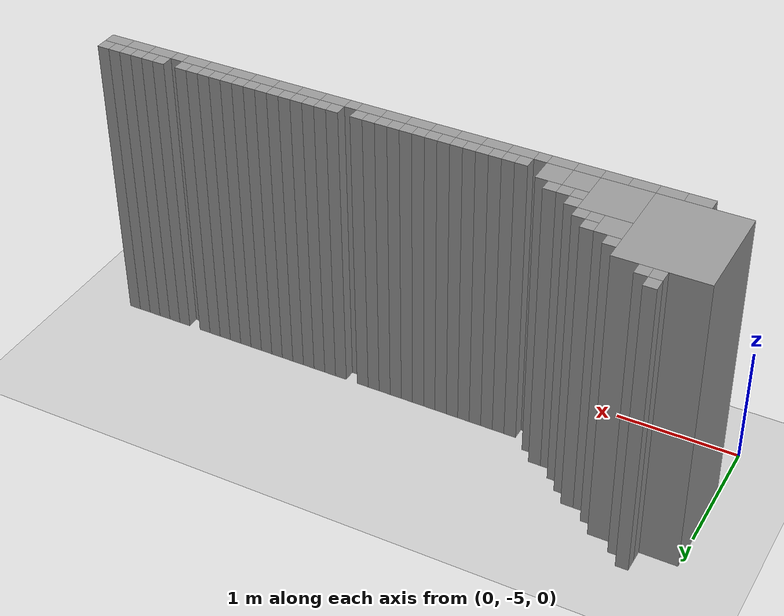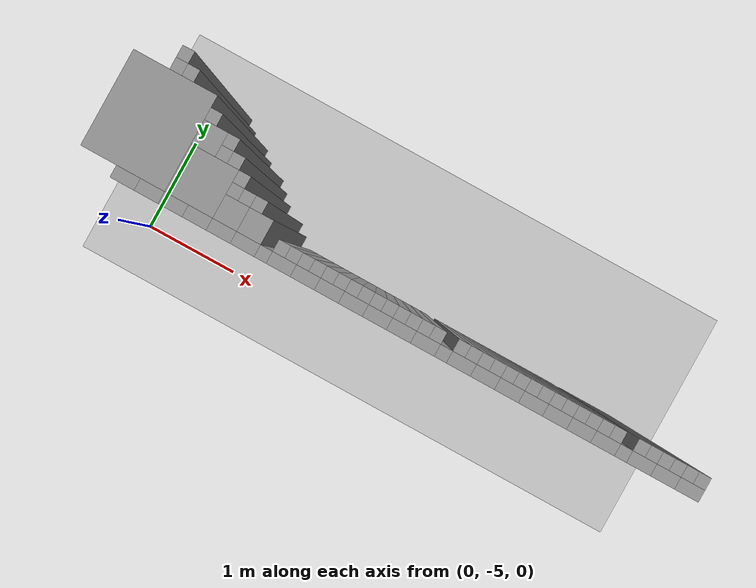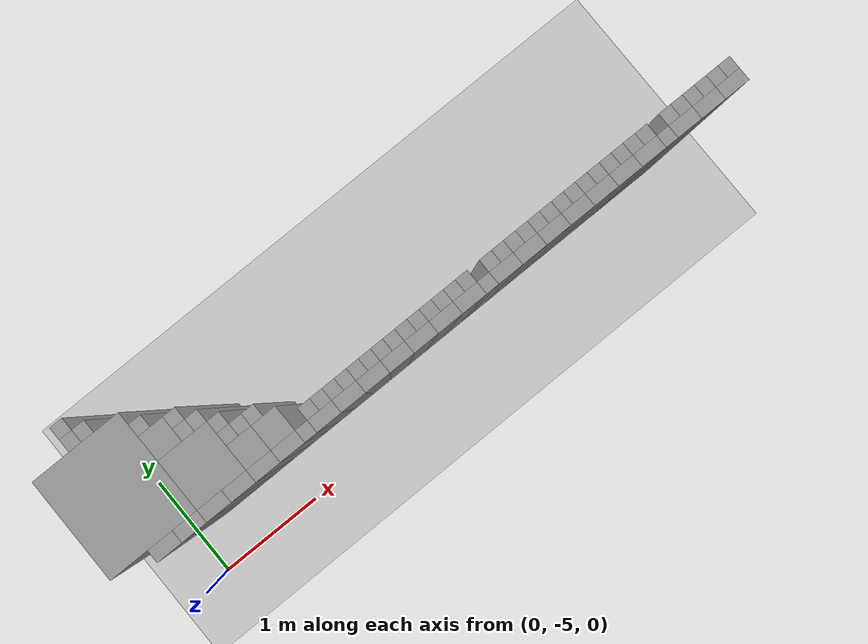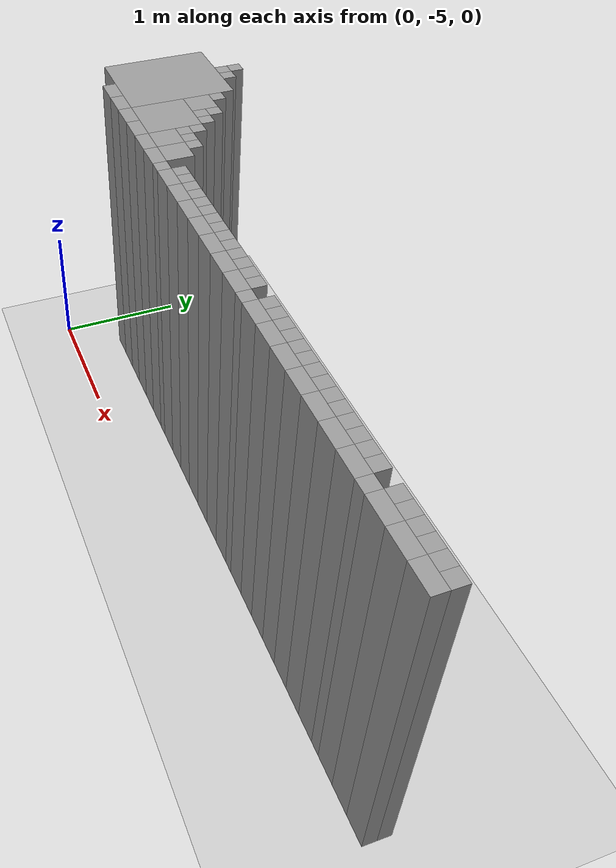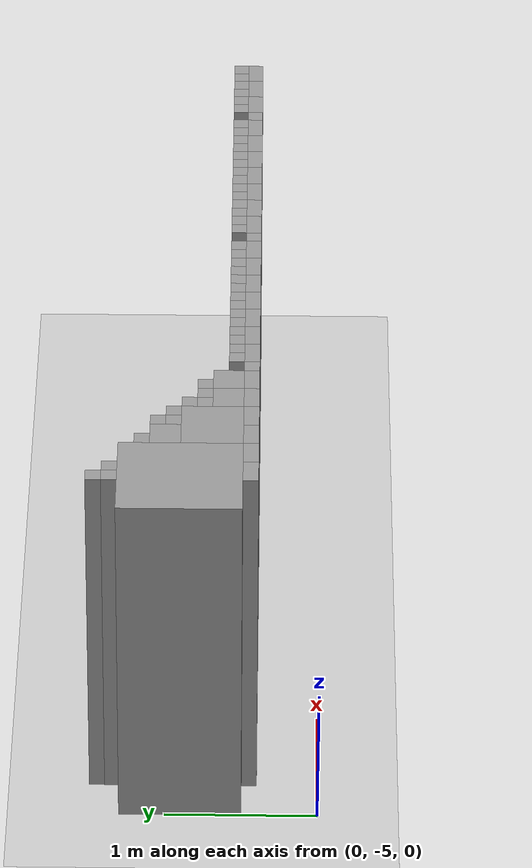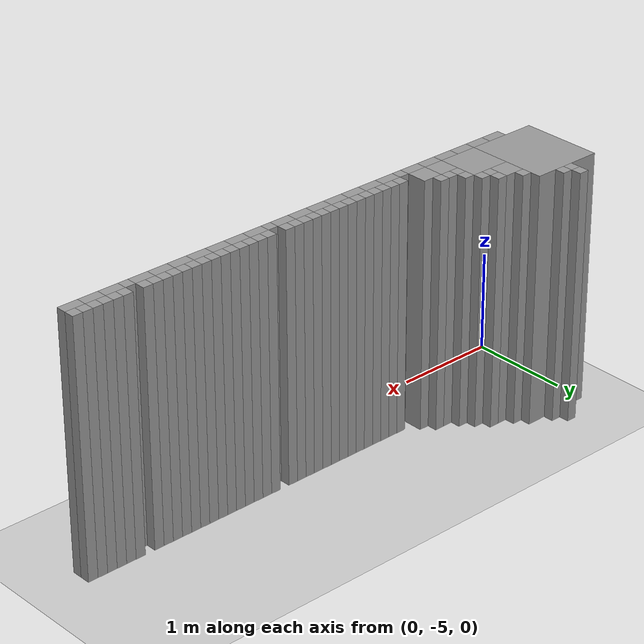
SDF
<sdf version="1.6">
 <world name="default">
  <include><uri>model://sun</uri></include>
  <include><uri>model://ground_plane</uri></include>
  <model name="stage_test">
   <static>1</static>
   <pose>-12 -12 0 0 0 0</pose>
   <link name="Wall_823">
    <pose>12.350000000000001 8.45 0 0 0 0</pose>
    <collision name="Wall_823_collision">
     <pose>0 0 1.25 0 0 0</pose>
     <geometry><box><size>0.09999999999999964 0.09999999999999964 2.5</size></box></geometry>
    </collision>
    <visual name="Wall_823_visual">
     <pose>0 0 1.25 0 0 0</pose>
     <geometry><box><size>0.09999999999999964 0.09999999999999964 2.5</size></box></geometry>
     <material>
      <script><uri>file://media/materials/scripts/gazebo.material</uri><name>Gazebo/Grey</name></script>
      <ambient>1 1 1 1</ambient>
     </material>
    </visual>
   </link>
   <link name="Wall_824">
    <pose>12.350000000000001 8.35 0 0 0 0</pose>
    <collision name="Wall_824_collision">
     <pose>0 0 1.25 0 0 0</pose>
     <geometry><box><size>0.09999999999999964 0.09999999999999964 2.5</size></box></geometry>
    </collision>
    <visual name="Wall_824_visual">
     <pose>0 0 1.25 0 0 0</pose>
     <geometry><box><size>0.09999999999999964 0.09999999999999964 2.5</size></box></geometry>
     <material>
      <script><uri>file://media/materials/scripts/gazebo.material</uri><name>Gazebo/Grey</name></script>
      <ambient>1 1 1 1</ambient>
     </material>
    </visual>
   </link>
   <link name="Wall_825">
    <pose>12.45 8.35 0 0 0 0</pose>
    <collision name="Wall_825_collision">
     <pose>0 0 1.25 0 0 0</pose>
     <geometry><box><size>0.09999999999999964 0.09999999999999964 2.5</size></box></geometry>
    </collision>
    <visual name="Wall_825_visual">
     <pose>0 0 1.25 0 0 0</pose>
     <geometry><box><size>0.09999999999999964 0.09999999999999964 2.5</size></box></geometry>
     <material>
      <script><uri>file://media/materials/scripts/gazebo.material</uri><name>Gazebo/Grey</name></script>
      <ambient>1 1 1 1</ambient>
     </material>
    </visual>
   </link>
   <link name="Wall_826">
    <pose>12.350000000000001 7.9 0 0 0 0</pose>
    <collision name="Wall_826_collision">
     <pose>0 0 1.25 0 0 0</pose>
     <geometry><box><size>0.7000000000000011 0.8000000000000007 2.5</size></box></geometry>
    </collision>
    <visual name="Wall_826_visual">
     <pose>0 0 1.25 0 0 0</pose>
     <geometry><box><size>0.7000000000000011 0.8000000000000007 2.5</size></box></geometry>
     <material>
      <script><uri>file://media/materials/scripts/gazebo.material</uri><name>Gazebo/Grey</name></script>
      <ambient>1 1 1 1</ambient>
     </material>
    </visual>
   </link>
   <link name="Wall_827">
    <pose>12.75 8.15 0 0 0 0</pose>
    <collision name="Wall_827_collision">
     <pose>0 0 1.25 0 0 0</pose>
     <geometry><box><size>0.09999999999999964 0.10000000000000142 2.5</size></box></geometry>
    </collision>
    <visual name="Wall_827_visual">
     <pose>0 0 1.25 0 0 0</pose>
     <geometry><box><size>0.09999999999999964 0.10000000000000142 2.5</size></box></geometry>
     <material>
      <script><uri>file://media/materials/scripts/gazebo.material</uri><name>Gazebo/Grey</name></script>
      <ambient>1 1 1 1</ambient>
     </material>
    </visual>
   </link>
   <link name="Wall_828">
    <pose>12.8 8.0 0 0 0 0</pose>
    <collision name="Wall_828_collision">
     <pose>0 0 1.25 0 0 0</pose>
     <geometry><box><size>0.1999999999999993 0.1999999999999993 2.5</size></box></geometry>
    </collision>
    <visual name="Wall_828_visual">
     <pose>0 0 1.25 0 0 0</pose>
     <geometry><box><size>0.1999999999999993 0.1999999999999993 2.5</size></box></geometry>
     <material>
      <script><uri>file://media/materials/scripts/gazebo.material</uri><name>Gazebo/Grey</name></script>
      <ambient>1 1 1 1</ambient>
     </material>
    </visual>
   </link>
   <link name="Wall_829">
    <pose>12.95 8.05 0 0 0 0</pose>
    <collision name="Wall_829_collision">
     <pose>0 0 1.25 0 0 0</pose>
     <geometry><box><size>0.09999999999999964 0.09999999999999964 2.5</size></box></geometry>
    </collision>
    <visual name="Wall_829_visual">
     <pose>0 0 1.25 0 0 0</pose>
     <geometry><box><size>0.09999999999999964 0.09999999999999964 2.5</size></box></geometry>
     <material>
      <script><uri>file://media/materials/scripts/gazebo.material</uri><name>Gazebo/Grey</name></script>
      <ambient>1 1 1 1</ambient>
     </material>
    </visual>
   </link>
   <link name="Wall_830">
    <pose>12.95 7.95 0 0 0 0</pose>
    <collision name="Wall_830_collision">
     <pose>0 0 1.25 0 0 0</pose>
     <geometry><box><size>0.09999999999999964 0.09999999999999964 2.5</size></box></geometry>
    </collision>
    <visual name="Wall_830_visual">
     <pose>0 0 1.25 0 0 0</pose>
     <geometry><box><size>0.09999999999999964 0.09999999999999964 2.5</size></box></geometry>
     <material>
      <script><uri>file://media/materials/scripts/gazebo.material</uri><name>Gazebo/Grey</name></script>
      <ambient>1 1 1 1</ambient>
     </material>
    </visual>
   </link>
   <link name="Wall_831">
    <pose>13.05 7.95 0 0 0 0</pose>
    <collision name="Wall_831_collision">
     <pose>0 0 1.25 0 0 0</pose>
     <geometry><box><size>0.10000000000000142 0.09999999999999964 2.5</size></box></geometry>
    </collision>
    <visual name="Wall_831_visual">
     <pose>0 0 1.25 0 0 0</pose>
     <geometry><box><size>0.10000000000000142 0.09999999999999964 2.5</size></box></geometry>
     <material>
      <script><uri>file://media/materials/scripts/gazebo.material</uri><name>Gazebo/Grey</name></script>
      <ambient>1 1 1 1</ambient>
     </material>
    </visual>
   </link>
   <link name="Wall_832">
    <pose>12.900000000000002 7.699999999999999 0 0 0 0</pose>
    <collision name="Wall_832_collision">
     <pose>0 0 1.25 0 0 0</pose>
     <geometry><box><size>0.40000000000000036 0.40000000000000036 2.5</size></box></geometry>
    </collision>
    <visual name="Wall_832_visual">
     <pose>0 0 1.25 0 0 0</pose>
     <geometry><box><size>0.40000000000000036 0.40000000000000036 2.5</size></box></geometry>
     <material>
      <script><uri>file://media/materials/scripts/gazebo.material</uri><name>Gazebo/Grey</name></script>
      <ambient>1 1 1 1</ambient>
     </material>
    </visual>
   </link>
   <link name="Wall_833">
    <pose>13.150000000000002 7.85 0 0 0 0</pose>
    <collision name="Wall_833_collision">
     <pose>0 0 1.25 0 0 0</pose>
     <geometry><box><size>0.09999999999999964 0.09999999999999964 2.5</size></box></geometry>
    </collision>
    <visual name="Wall_833_visual">
     <pose>0 0 1.25 0 0 0</pose>
     <geometry><box><size>0.09999999999999964 0.09999999999999964 2.5</size></box></geometry>
     <material>
      <script><uri>file://media/materials/scripts/gazebo.material</uri><name>Gazebo/Grey</name></script>
      <ambient>1 1 1 1</ambient>
     </material>
    </visual>
   </link>
   <link name="Wall_834">
    <pose>13.150000000000002 7.750000000000001 0 0 0 0</pose>
    <collision name="Wall_834_collision">
     <pose>0 0 1.25 0 0 0</pose>
     <geometry><box><size>0.09999999999999964 0.10000000000000053 2.5</size></box></geometry>
    </collision>
    <visual name="Wall_834_visual">
     <pose>0 0 1.25 0 0 0</pose>
     <geometry><box><size>0.09999999999999964 0.10000000000000053 2.5</size></box></geometry>
     <material>
      <script><uri>file://media/materials/scripts/gazebo.material</uri><name>Gazebo/Grey</name></script>
      <ambient>1 1 1 1</ambient>
     </material>
    </visual>
   </link>
   <link name="Wall_835">
    <pose>13.25 7.750000000000001 0 0 0 0</pose>
    <collision name="Wall_835_collision">
     <pose>0 0 1.25 0 0 0</pose>
     <geometry><box><size>0.09999999999999964 0.10000000000000053 2.5</size></box></geometry>
    </collision>
    <visual name="Wall_835_visual">
     <pose>0 0 1.25 0 0 0</pose>
     <geometry><box><size>0.09999999999999964 0.10000000000000053 2.5</size></box></geometry>
     <material>
      <script><uri>file://media/materials/scripts/gazebo.material</uri><name>Gazebo/Grey</name></script>
      <ambient>1 1 1 1</ambient>
     </material>
    </visual>
   </link>
   <link name="Wall_836">
    <pose>13.200000000000001 7.6 0 0 0 0</pose>
    <collision name="Wall_836_collision">
     <pose>0 0 1.25 0 0 0</pose>
     <geometry><box><size>0.1999999999999993 0.20000000000000018 2.5</size></box></geometry>
    </collision>
    <visual name="Wall_836_visual">
     <pose>0 0 1.25 0 0 0</pose>
     <geometry><box><size>0.1999999999999993 0.20000000000000018 2.5</size></box></geometry>
     <material>
      <script><uri>file://media/materials/scripts/gazebo.material</uri><name>Gazebo/Grey</name></script>
      <ambient>1 1 1 1</ambient>
     </material>
    </visual>
   </link>
   <link name="Wall_837">
    <pose>13.350000000000001 7.750000000000001 0 0 0 0</pose>
    <collision name="Wall_837_collision">
     <pose>0 0 1.25 0 0 0</pose>
     <geometry><box><size>0.09999999999999964 0.10000000000000053 2.5</size></box></geometry>
    </collision>
    <visual name="Wall_837_visual">
     <pose>0 0 1.25 0 0 0</pose>
     <geometry><box><size>0.09999999999999964 0.10000000000000053 2.5</size></box></geometry>
     <material>
      <script><uri>file://media/materials/scripts/gazebo.material</uri><name>Gazebo/Grey</name></script>
      <ambient>1 1 1 1</ambient>
     </material>
    </visual>
   </link>
   <link name="Wall_838">
    <pose>13.399999999999999 7.6 0 0 0 0</pose>
    <collision name="Wall_838_collision">
     <pose>0 0 1.25 0 0 0</pose>
     <geometry><box><size>0.1999999999999993 0.20000000000000018 2.5</size></box></geometry>
    </collision>
    <visual name="Wall_838_visual">
     <pose>0 0 1.25 0 0 0</pose>
     <geometry><box><size>0.1999999999999993 0.20000000000000018 2.5</size></box></geometry>
     <material>
      <script><uri>file://media/materials/scripts/gazebo.material</uri><name>Gazebo/Grey</name></script>
      <ambient>1 1 1 1</ambient>
     </material>
    </visual>
   </link>
   <link name="Wall_841">
    <pose>12.399999999999999 7.45 0 0 0 0</pose>
    <collision name="Wall_841_collision">
     <pose>0 0 1.25 0 0 0</pose>
     <geometry><box><size>0.1999999999999993 0.09999999999999964 2.5</size></box></geometry>
    </collision>
    <visual name="Wall_841_visual">
     <pose>0 0 1.25 0 0 0</pose>
     <geometry><box><size>0.1999999999999993 0.09999999999999964 2.5</size></box></geometry>
     <material>
      <script><uri>file://media/materials/scripts/gazebo.material</uri><name>Gazebo/Grey</name></script>
      <ambient>1 1 1 1</ambient>
     </material>
    </visual>
   </link>
   <link name="Wall_842">
    <pose>12.600000000000001 7.45 0 0 0 0</pose>
    <collision name="Wall_842_collision">
     <pose>0 0 1.25 0 0 0</pose>
     <geometry><box><size>0.20000000000000107 0.09999999999999964 2.5</size></box></geometry>
    </collision>
    <visual name="Wall_842_visual">
     <pose>0 0 1.25 0 0 0</pose>
     <geometry><box><size>0.20000000000000107 0.09999999999999964 2.5</size></box></geometry>
     <material>
      <script><uri>file://media/materials/scripts/gazebo.material</uri><name>Gazebo/Grey</name></script>
      <ambient>1 1 1 1</ambient>
     </material>
    </visual>
   </link>
   <link name="Wall_843">
    <pose>12.8 7.45 0 0 0 0</pose>
    <collision name="Wall_843_collision">
     <pose>0 0 1.25 0 0 0</pose>
     <geometry><box><size>0.1999999999999993 0.09999999999999964 2.5</size></box></geometry>
    </collision>
    <visual name="Wall_843_visual">
     <pose>0 0 1.25 0 0 0</pose>
     <geometry><box><size>0.1999999999999993 0.09999999999999964 2.5</size></box></geometry>
     <material>
      <script><uri>file://media/materials/scripts/gazebo.material</uri><name>Gazebo/Grey</name></script>
      <ambient>1 1 1 1</ambient>
     </material>
    </visual>
   </link>
   <link name="Wall_844">
    <pose>13.0 7.45 0 0 0 0</pose>
    <collision name="Wall_844_collision">
     <pose>0 0 1.25 0 0 0</pose>
     <geometry><box><size>0.20000000000000107 0.09999999999999964 2.5</size></box></geometry>
    </collision>
    <visual name="Wall_844_visual">
     <pose>0 0 1.25 0 0 0</pose>
     <geometry><box><size>0.20000000000000107 0.09999999999999964 2.5</size></box></geometry>
     <material>
      <script><uri>file://media/materials/scripts/gazebo.material</uri><name>Gazebo/Grey</name></script>
      <ambient>1 1 1 1</ambient>
     </material>
    </visual>
   </link>
   <link name="Wall_845">
    <pose>13.200000000000001 7.45 0 0 0 0</pose>
    <collision name="Wall_845_collision">
     <pose>0 0 1.25 0 0 0</pose>
     <geometry><box><size>0.1999999999999993 0.09999999999999964 2.5</size></box></geometry>
    </collision>
    <visual name="Wall_845_visual">
     <pose>0 0 1.25 0 0 0</pose>
     <geometry><box><size>0.1999999999999993 0.09999999999999964 2.5</size></box></geometry>
     <material>
      <script><uri>file://media/materials/scripts/gazebo.material</uri><name>Gazebo/Grey</name></script>
      <ambient>1 1 1 1</ambient>
     </material>
    </visual>
   </link>
   <link name="Wall_846">
    <pose>13.399999999999999 7.45 0 0 0 0</pose>
    <collision name="Wall_846_collision">
     <pose>0 0 1.25 0 0 0</pose>
     <geometry><box><size>0.1999999999999993 0.09999999999999964 2.5</size></box></geometry>
    </collision>
    <visual name="Wall_846_visual">
     <pose>0 0 1.25 0 0 0</pose>
     <geometry><box><size>0.1999999999999993 0.09999999999999964 2.5</size></box></geometry>
     <material>
      <script><uri>file://media/materials/scripts/gazebo.material</uri><name>Gazebo/Grey</name></script>
      <ambient>1 1 1 1</ambient>
     </material>
    </visual>
   </link>
   <link name="Wall_847">
    <pose>13.650000000000002 7.550000000000001 0 0 0 0</pose>
    <collision name="Wall_847_collision">
     <pose>0 0 1.25 0 0 0</pose>
     <geometry><box><size>0.09999999999999964 0.10000000000000053 2.5</size></box></geometry>
    </collision>
    <visual name="Wall_847_visual">
     <pose>0 0 1.25 0 0 0</pose>
     <geometry><box><size>0.09999999999999964 0.10000000000000053 2.5</size></box></geometry>
     <material>
      <script><uri>file://media/materials/scripts/gazebo.material</uri><name>Gazebo/Grey</name></script>
      <ambient>1 1 1 1</ambient>
     </material>
    </visual>
   </link>
   <link name="Wall_848">
    <pose>13.75 7.550000000000001 0 0 0 0</pose>
    <collision name="Wall_848_collision">
     <pose>0 0 1.25 0 0 0</pose>
     <geometry><box><size>0.09999999999999964 0.10000000000000053 2.5</size></box></geometry>
    </collision>
    <visual name="Wall_848_visual">
     <pose>0 0 1.25 0 0 0</pose>
     <geometry><box><size>0.09999999999999964 0.10000000000000053 2.5</size></box></geometry>
     <material>
      <script><uri>file://media/materials/scripts/gazebo.material</uri><name>Gazebo/Grey</name></script>
      <ambient>1 1 1 1</ambient>
     </material>
    </visual>
   </link>
   <link name="Wall_849">
    <pose>13.850000000000001 7.550000000000001 0 0 0 0</pose>
    <collision name="Wall_849_collision">
     <pose>0 0 1.25 0 0 0</pose>
     <geometry><box><size>0.09999999999999964 0.10000000000000053 2.5</size></box></geometry>
    </collision>
    <visual name="Wall_849_visual">
     <pose>0 0 1.25 0 0 0</pose>
     <geometry><box><size>0.09999999999999964 0.10000000000000053 2.5</size></box></geometry>
     <material>
      <script><uri>file://media/materials/scripts/gazebo.material</uri><name>Gazebo/Grey</name></script>
      <ambient>1 1 1 1</ambient>
     </material>
    </visual>
   </link>
   <link name="Wall_850">
    <pose>13.95 7.550000000000001 0 0 0 0</pose>
    <collision name="Wall_850_collision">
     <pose>0 0 1.25 0 0 0</pose>
     <geometry><box><size>0.09999999999999964 0.10000000000000053 2.5</size></box></geometry>
    </collision>
    <visual name="Wall_850_visual">
     <pose>0 0 1.25 0 0 0</pose>
     <geometry><box><size>0.09999999999999964 0.10000000000000053 2.5</size></box></geometry>
     <material>
      <script><uri>file://media/materials/scripts/gazebo.material</uri><name>Gazebo/Grey</name></script>
      <ambient>1 1 1 1</ambient>
     </material>
    </visual>
   </link>
   <link name="Wall_851">
    <pose>14.05 7.550000000000001 0 0 0 0</pose>
    <collision name="Wall_851_collision">
     <pose>0 0 1.25 0 0 0</pose>
     <geometry><box><size>0.10000000000000142 0.10000000000000053 2.5</size></box></geometry>
    </collision>
    <visual name="Wall_851_visual">
     <pose>0 0 1.25 0 0 0</pose>
     <geometry><box><size>0.10000000000000142 0.10000000000000053 2.5</size></box></geometry>
     <material>
      <script><uri>file://media/materials/scripts/gazebo.material</uri><name>Gazebo/Grey</name></script>
      <ambient>1 1 1 1</ambient>
     </material>
    </visual>
   </link>
   <link name="Wall_852">
    <pose>14.150000000000002 7.550000000000001 0 0 0 0</pose>
    <collision name="Wall_852_collision">
     <pose>0 0 1.25 0 0 0</pose>
     <geometry><box><size>0.09999999999999964 0.10000000000000053 2.5</size></box></geometry>
    </collision>
    <visual name="Wall_852_visual">
     <pose>0 0 1.25 0 0 0</pose>
     <geometry><box><size>0.09999999999999964 0.10000000000000053 2.5</size></box></geometry>
     <material>
      <script><uri>file://media/materials/scripts/gazebo.material</uri><name>Gazebo/Grey</name></script>
      <ambient>1 1 1 1</ambient>
     </material>
    </visual>
   </link>
   <link name="Wall_853">
    <pose>14.25 7.550000000000001 0 0 0 0</pose>
    <collision name="Wall_853_collision">
     <pose>0 0 1.25 0 0 0</pose>
     <geometry><box><size>0.09999999999999964 0.10000000000000053 2.5</size></box></geometry>
    </collision>
    <visual name="Wall_853_visual">
     <pose>0 0 1.25 0 0 0</pose>
     <geometry><box><size>0.09999999999999964 0.10000000000000053 2.5</size></box></geometry>
     <material>
      <script><uri>file://media/materials/scripts/gazebo.material</uri><name>Gazebo/Grey</name></script>
      <ambient>1 1 1 1</ambient>
     </material>
    </visual>
   </link>
   <link name="Wall_854">
    <pose>14.350000000000001 7.550000000000001 0 0 0 0</pose>
    <collision name="Wall_854_collision">
     <pose>0 0 1.25 0 0 0</pose>
     <geometry><box><size>0.09999999999999964 0.10000000000000053 2.5</size></box></geometry>
    </collision>
    <visual name="Wall_854_visual">
     <pose>0 0 1.25 0 0 0</pose>
     <geometry><box><size>0.09999999999999964 0.10000000000000053 2.5</size></box></geometry>
     <material>
      <script><uri>file://media/materials/scripts/gazebo.material</uri><name>Gazebo/Grey</name></script>
      <ambient>1 1 1 1</ambient>
     </material>
    </visual>
   </link>
   <link name="Wall_855">
    <pose>14.45 7.550000000000001 0 0 0 0</pose>
    <collision name="Wall_855_collision">
     <pose>0 0 1.25 0 0 0</pose>
     <geometry><box><size>0.09999999999999964 0.10000000000000053 2.5</size></box></geometry>
    </collision>
    <visual name="Wall_855_visual">
     <pose>0 0 1.25 0 0 0</pose>
     <geometry><box><size>0.09999999999999964 0.10000000000000053 2.5</size></box></geometry>
     <material>
      <script><uri>file://media/materials/scripts/gazebo.material</uri><name>Gazebo/Grey</name></script>
      <ambient>1 1 1 1</ambient>
     </material>
    </visual>
   </link>
   <link name="Wall_856">
    <pose>14.55 7.550000000000001 0 0 0 0</pose>
    <collision name="Wall_856_collision">
     <pose>0 0 1.25 0 0 0</pose>
     <geometry><box><size>0.10000000000000142 0.10000000000000053 2.5</size></box></geometry>
    </collision>
    <visual name="Wall_856_visual">
     <pose>0 0 1.25 0 0 0</pose>
     <geometry><box><size>0.10000000000000142 0.10000000000000053 2.5</size></box></geometry>
     <material>
      <script><uri>file://media/materials/scripts/gazebo.material</uri><name>Gazebo/Grey</name></script>
      <ambient>1 1 1 1</ambient>
     </material>
    </visual>
   </link>
   <link name="Wall_857">
    <pose>14.650000000000002 7.550000000000001 0 0 0 0</pose>
    <collision name="Wall_857_collision">
     <pose>0 0 1.25 0 0 0</pose>
     <geometry><box><size>0.09999999999999964 0.10000000000000053 2.5</size></box></geometry>
    </collision>
    <visual name="Wall_857_visual">
     <pose>0 0 1.25 0 0 0</pose>
     <geometry><box><size>0.09999999999999964 0.10000000000000053 2.5</size></box></geometry>
     <material>
      <script><uri>file://media/materials/scripts/gazebo.material</uri><name>Gazebo/Grey</name></script>
      <ambient>1 1 1 1</ambient>
     </material>
    </visual>
   </link>
   <link name="Wall_858">
    <pose>14.75 7.550000000000001 0 0 0 0</pose>
    <collision name="Wall_858_collision">
     <pose>0 0 1.25 0 0 0</pose>
     <geometry><box><size>0.09999999999999964 0.10000000000000053 2.5</size></box></geometry>
    </collision>
    <visual name="Wall_858_visual">
     <pose>0 0 1.25 0 0 0</pose>
     <geometry><box><size>0.09999999999999964 0.10000000000000053 2.5</size></box></geometry>
     <material>
      <script><uri>file://media/materials/scripts/gazebo.material</uri><name>Gazebo/Grey</name></script>
      <ambient>1 1 1 1</ambient>
     </material>
    </visual>
   </link>
   <link name="Wall_859">
    <pose>14.850000000000001 7.550000000000001 0 0 0 0</pose>
    <collision name="Wall_859_collision">
     <pose>0 0 1.25 0 0 0</pose>
     <geometry><box><size>0.09999999999999964 0.10000000000000053 2.5</size></box></geometry>
    </collision>
    <visual name="Wall_859_visual">
     <pose>0 0 1.25 0 0 0</pose>
     <geometry><box><size>0.09999999999999964 0.10000000000000053 2.5</size></box></geometry>
     <material>
      <script><uri>file://media/materials/scripts/gazebo.material</uri><name>Gazebo/Grey</name></script>
      <ambient>1 1 1 1</ambient>
     </material>
    </visual>
   </link>
   <link name="Wall_860">
    <pose>14.95 7.550000000000001 0 0 0 0</pose>
    <collision name="Wall_860_collision">
     <pose>0 0 1.25 0 0 0</pose>
     <geometry><box><size>0.09999999999999964 0.10000000000000053 2.5</size></box></geometry>
    </collision>
    <visual name="Wall_860_visual">
     <pose>0 0 1.25 0 0 0</pose>
     <geometry><box><size>0.09999999999999964 0.10000000000000053 2.5</size></box></geometry>
     <material>
      <script><uri>file://media/materials/scripts/gazebo.material</uri><name>Gazebo/Grey</name></script>
      <ambient>1 1 1 1</ambient>
     </material>
    </visual>
   </link>
   <link name="Wall_861">
    <pose>13.55 7.45 0 0 0 0</pose>
    <collision name="Wall_861_collision">
     <pose>0 0 1.25 0 0 0</pose>
     <geometry><box><size>0.10000000000000142 0.09999999999999964 2.5</size></box></geometry>
    </collision>
    <visual name="Wall_861_visual">
     <pose>0 0 1.25 0 0 0</pose>
     <geometry><box><size>0.10000000000000142 0.09999999999999964 2.5</size></box></geometry>
     <material>
      <script><uri>file://media/materials/scripts/gazebo.material</uri><name>Gazebo/Grey</name></script>
      <ambient>1 1 1 1</ambient>
     </material>
    </visual>
   </link>
   <link name="Wall_862">
    <pose>13.700000000000001 7.45 0 0 0 0</pose>
    <collision name="Wall_862_collision">
     <pose>0 0 1.25 0 0 0</pose>
     <geometry><box><size>0.1999999999999993 0.09999999999999964 2.5</size></box></geometry>
    </collision>
    <visual name="Wall_862_visual">
     <pose>0 0 1.25 0 0 0</pose>
     <geometry><box><size>0.1999999999999993 0.09999999999999964 2.5</size></box></geometry>
     <material>
      <script><uri>file://media/materials/scripts/gazebo.material</uri><name>Gazebo/Grey</name></script>
      <ambient>1 1 1 1</ambient>
     </material>
    </visual>
   </link>
   <link name="Wall_863">
    <pose>13.899999999999999 7.45 0 0 0 0</pose>
    <collision name="Wall_863_collision">
     <pose>0 0 1.25 0 0 0</pose>
     <geometry><box><size>0.1999999999999993 0.09999999999999964 2.5</size></box></geometry>
    </collision>
    <visual name="Wall_863_visual">
     <pose>0 0 1.25 0 0 0</pose>
     <geometry><box><size>0.1999999999999993 0.09999999999999964 2.5</size></box></geometry>
     <material>
      <script><uri>file://media/materials/scripts/gazebo.material</uri><name>Gazebo/Grey</name></script>
      <ambient>1 1 1 1</ambient>
     </material>
    </visual>
   </link>
   <link name="Wall_864">
    <pose>14.100000000000001 7.45 0 0 0 0</pose>
    <collision name="Wall_864_collision">
     <pose>0 0 1.25 0 0 0</pose>
     <geometry><box><size>0.20000000000000107 0.09999999999999964 2.5</size></box></geometry>
    </collision>
    <visual name="Wall_864_visual">
     <pose>0 0 1.25 0 0 0</pose>
     <geometry><box><size>0.20000000000000107 0.09999999999999964 2.5</size></box></geometry>
     <material>
      <script><uri>file://media/materials/scripts/gazebo.material</uri><name>Gazebo/Grey</name></script>
      <ambient>1 1 1 1</ambient>
     </material>
    </visual>
   </link>
   <link name="Wall_865">
    <pose>14.3 7.45 0 0 0 0</pose>
    <collision name="Wall_865_collision">
     <pose>0 0 1.25 0 0 0</pose>
     <geometry><box><size>0.1999999999999993 0.09999999999999964 2.5</size></box></geometry>
    </collision>
    <visual name="Wall_865_visual">
     <pose>0 0 1.25 0 0 0</pose>
     <geometry><box><size>0.1999999999999993 0.09999999999999964 2.5</size></box></geometry>
     <material>
      <script><uri>file://media/materials/scripts/gazebo.material</uri><name>Gazebo/Grey</name></script>
      <ambient>1 1 1 1</ambient>
     </material>
    </visual>
   </link>
   <link name="Wall_866">
    <pose>14.5 7.45 0 0 0 0</pose>
    <collision name="Wall_866_collision">
     <pose>0 0 1.25 0 0 0</pose>
     <geometry><box><size>0.20000000000000107 0.09999999999999964 2.5</size></box></geometry>
    </collision>
    <visual name="Wall_866_visual">
     <pose>0 0 1.25 0 0 0</pose>
     <geometry><box><size>0.20000000000000107 0.09999999999999964 2.5</size></box></geometry>
     <material>
      <script><uri>file://media/materials/scripts/gazebo.material</uri><name>Gazebo/Grey</name></script>
      <ambient>1 1 1 1</ambient>
     </material>
    </visual>
   </link>
   <link name="Wall_867">
    <pose>14.700000000000001 7.45 0 0 0 0</pose>
    <collision name="Wall_867_collision">
     <pose>0 0 1.25 0 0 0</pose>
     <geometry><box><size>0.1999999999999993 0.09999999999999964 2.5</size></box></geometry>
    </collision>
    <visual name="Wall_867_visual">
     <pose>0 0 1.25 0 0 0</pose>
     <geometry><box><size>0.1999999999999993 0.09999999999999964 2.5</size></box></geometry>
     <material>
      <script><uri>file://media/materials/scripts/gazebo.material</uri><name>Gazebo/Grey</name></script>
      <ambient>1 1 1 1</ambient>
     </material>
    </visual>
   </link>
   <link name="Wall_868">
    <pose>14.899999999999999 7.45 0 0 0 0</pose>
    <collision name="Wall_868_collision">
     <pose>0 0 1.25 0 0 0</pose>
     <geometry><box><size>0.1999999999999993 0.09999999999999964 2.5</size></box></geometry>
    </collision>
    <visual name="Wall_868_visual">
     <pose>0 0 1.25 0 0 0</pose>
     <geometry><box><size>0.1999999999999993 0.09999999999999964 2.5</size></box></geometry>
     <material>
      <script><uri>file://media/materials/scripts/gazebo.material</uri><name>Gazebo/Grey</name></script>
      <ambient>1 1 1 1</ambient>
     </material>
    </visual>
   </link>
   <link name="Wall_878">
    <pose>15.150000000000002 7.550000000000001 0 0 0 0</pose>
    <collision name="Wall_878_collision">
     <pose>0 0 1.25 0 0 0</pose>
     <geometry><box><size>0.09999999999999964 0.10000000000000053 2.5</size></box></geometry>
    </collision>
    <visual name="Wall_878_visual">
     <pose>0 0 1.25 0 0 0</pose>
     <geometry><box><size>0.09999999999999964 0.10000000000000053 2.5</size></box></geometry>
     <material>
      <script><uri>file://media/materials/scripts/gazebo.material</uri><name>Gazebo/Grey</name></script>
      <ambient>1 1 1 1</ambient>
     </material>
    </visual>
   </link>
   <link name="Wall_879">
    <pose>15.25 7.550000000000001 0 0 0 0</pose>
    <collision name="Wall_879_collision">
     <pose>0 0 1.25 0 0 0</pose>
     <geometry><box><size>0.09999999999999964 0.10000000000000053 2.5</size></box></geometry>
    </collision>
    <visual name="Wall_879_visual">
     <pose>0 0 1.25 0 0 0</pose>
     <geometry><box><size>0.09999999999999964 0.10000000000000053 2.5</size></box></geometry>
     <material>
      <script><uri>file://media/materials/scripts/gazebo.material</uri><name>Gazebo/Grey</name></script>
      <ambient>1 1 1 1</ambient>
     </material>
    </visual>
   </link>
   <link name="Wall_880">
    <pose>15.350000000000001 7.550000000000001 0 0 0 0</pose>
    <collision name="Wall_880_collision">
     <pose>0 0 1.25 0 0 0</pose>
     <geometry><box><size>0.09999999999999964 0.10000000000000053 2.5</size></box></geometry>
    </collision>
    <visual name="Wall_880_visual">
     <pose>0 0 1.25 0 0 0</pose>
     <geometry><box><size>0.09999999999999964 0.10000000000000053 2.5</size></box></geometry>
     <material>
      <script><uri>file://media/materials/scripts/gazebo.material</uri><name>Gazebo/Grey</name></script>
      <ambient>1 1 1 1</ambient>
     </material>
    </visual>
   </link>
   <link name="Wall_881">
    <pose>15.45 7.550000000000001 0 0 0 0</pose>
    <collision name="Wall_881_collision">
     <pose>0 0 1.25 0 0 0</pose>
     <geometry><box><size>0.09999999999999964 0.10000000000000053 2.5</size></box></geometry>
    </collision>
    <visual name="Wall_881_visual">
     <pose>0 0 1.25 0 0 0</pose>
     <geometry><box><size>0.09999999999999964 0.10000000000000053 2.5</size></box></geometry>
     <material>
      <script><uri>file://media/materials/scripts/gazebo.material</uri><name>Gazebo/Grey</name></script>
      <ambient>1 1 1 1</ambient>
     </material>
    </visual>
   </link>
   <link name="Wall_882">
    <pose>15.55 7.550000000000001 0 0 0 0</pose>
    <collision name="Wall_882_collision">
     <pose>0 0 1.25 0 0 0</pose>
     <geometry><box><size>0.10000000000000142 0.10000000000000053 2.5</size></box></geometry>
    </collision>
    <visual name="Wall_882_visual">
     <pose>0 0 1.25 0 0 0</pose>
     <geometry><box><size>0.10000000000000142 0.10000000000000053 2.5</size></box></geometry>
     <material>
      <script><uri>file://media/materials/scripts/gazebo.material</uri><name>Gazebo/Grey</name></script>
      <ambient>1 1 1 1</ambient>
     </material>
    </visual>
   </link>
   <link name="Wall_883">
    <pose>15.650000000000002 7.550000000000001 0 0 0 0</pose>
    <collision name="Wall_883_collision">
     <pose>0 0 1.25 0 0 0</pose>
     <geometry><box><size>0.09999999999999964 0.10000000000000053 2.5</size></box></geometry>
    </collision>
    <visual name="Wall_883_visual">
     <pose>0 0 1.25 0 0 0</pose>
     <geometry><box><size>0.09999999999999964 0.10000000000000053 2.5</size></box></geometry>
     <material>
      <script><uri>file://media/materials/scripts/gazebo.material</uri><name>Gazebo/Grey</name></script>
      <ambient>1 1 1 1</ambient>
     </material>
    </visual>
   </link>
   <link name="Wall_884">
    <pose>15.75 7.550000000000001 0 0 0 0</pose>
    <collision name="Wall_884_collision">
     <pose>0 0 1.25 0 0 0</pose>
     <geometry><box><size>0.09999999999999964 0.10000000000000053 2.5</size></box></geometry>
    </collision>
    <visual name="Wall_884_visual">
     <pose>0 0 1.25 0 0 0</pose>
     <geometry><box><size>0.09999999999999964 0.10000000000000053 2.5</size></box></geometry>
     <material>
      <script><uri>file://media/materials/scripts/gazebo.material</uri><name>Gazebo/Grey</name></script>
      <ambient>1 1 1 1</ambient>
     </material>
    </visual>
   </link>
   <link name="Wall_885">
    <pose>15.850000000000001 7.550000000000001 0 0 0 0</pose>
    <collision name="Wall_885_collision">
     <pose>0 0 1.25 0 0 0</pose>
     <geometry><box><size>0.09999999999999964 0.10000000000000053 2.5</size></box></geometry>
    </collision>
    <visual name="Wall_885_visual">
     <pose>0 0 1.25 0 0 0</pose>
     <geometry><box><size>0.09999999999999964 0.10000000000000053 2.5</size></box></geometry>
     <material>
      <script><uri>file://media/materials/scripts/gazebo.material</uri><name>Gazebo/Grey</name></script>
      <ambient>1 1 1 1</ambient>
     </material>
    </visual>
   </link>
   <link name="Wall_886">
    <pose>15.95 7.550000000000001 0 0 0 0</pose>
    <collision name="Wall_886_collision">
     <pose>0 0 1.25 0 0 0</pose>
     <geometry><box><size>0.09999999999999964 0.10000000000000053 2.5</size></box></geometry>
    </collision>
    <visual name="Wall_886_visual">
     <pose>0 0 1.25 0 0 0</pose>
     <geometry><box><size>0.09999999999999964 0.10000000000000053 2.5</size></box></geometry>
     <material>
      <script><uri>file://media/materials/scripts/gazebo.material</uri><name>Gazebo/Grey</name></script>
      <ambient>1 1 1 1</ambient>
     </material>
    </visual>
   </link>
   <link name="Wall_887">
    <pose>16.05 7.550000000000001 0 0 0 0</pose>
    <collision name="Wall_887_collision">
     <pose>0 0 1.25 0 0 0</pose>
     <geometry><box><size>0.10000000000000142 0.10000000000000053 2.5</size></box></geometry>
    </collision>
    <visual name="Wall_887_visual">
     <pose>0 0 1.25 0 0 0</pose>
     <geometry><box><size>0.10000000000000142 0.10000000000000053 2.5</size></box></geometry>
     <material>
      <script><uri>file://media/materials/scripts/gazebo.material</uri><name>Gazebo/Grey</name></script>
      <ambient>1 1 1 1</ambient>
     </material>
    </visual>
   </link>
   <link name="Wall_888">
    <pose>16.15 7.550000000000001 0 0 0 0</pose>
    <collision name="Wall_888_collision">
     <pose>0 0 1.25 0 0 0</pose>
     <geometry><box><size>0.09999999999999787 0.10000000000000053 2.5</size></box></geometry>
    </collision>
    <visual name="Wall_888_visual">
     <pose>0 0 1.25 0 0 0</pose>
     <geometry><box><size>0.09999999999999787 0.10000000000000053 2.5</size></box></geometry>
     <material>
      <script><uri>file://media/materials/scripts/gazebo.material</uri><name>Gazebo/Grey</name></script>
      <ambient>1 1 1 1</ambient>
     </material>
    </visual>
   </link>
   <link name="Wall_889">
    <pose>16.25 7.550000000000001 0 0 0 0</pose>
    <collision name="Wall_889_collision">
     <pose>0 0 1.25 0 0 0</pose>
     <geometry><box><size>0.10000000000000142 0.10000000000000053 2.5</size></box></geometry>
    </collision>
    <visual name="Wall_889_visual">
     <pose>0 0 1.25 0 0 0</pose>
     <geometry><box><size>0.10000000000000142 0.10000000000000053 2.5</size></box></geometry>
     <material>
      <script><uri>file://media/materials/scripts/gazebo.material</uri><name>Gazebo/Grey</name></script>
      <ambient>1 1 1 1</ambient>
     </material>
    </visual>
   </link>
   <link name="Wall_890">
    <pose>16.35 7.550000000000001 0 0 0 0</pose>
    <collision name="Wall_890_collision">
     <pose>0 0 1.25 0 0 0</pose>
     <geometry><box><size>0.10000000000000142 0.10000000000000053 2.5</size></box></geometry>
    </collision>
    <visual name="Wall_890_visual">
     <pose>0 0 1.25 0 0 0</pose>
     <geometry><box><size>0.10000000000000142 0.10000000000000053 2.5</size></box></geometry>
     <material>
      <script><uri>file://media/materials/scripts/gazebo.material</uri><name>Gazebo/Grey</name></script>
      <ambient>1 1 1 1</ambient>
     </material>
    </visual>
   </link>
   <link name="Wall_891">
    <pose>16.450000000000003 7.550000000000001 0 0 0 0</pose>
    <collision name="Wall_891_collision">
     <pose>0 0 1.25 0 0 0</pose>
     <geometry><box><size>0.09999999999999787 0.10000000000000053 2.5</size></box></geometry>
    </collision>
    <visual name="Wall_891_visual">
     <pose>0 0 1.25 0 0 0</pose>
     <geometry><box><size>0.09999999999999787 0.10000000000000053 2.5</size></box></geometry>
     <material>
      <script><uri>file://media/materials/scripts/gazebo.material</uri><name>Gazebo/Grey</name></script>
      <ambient>1 1 1 1</ambient>
     </material>
    </visual>
   </link>
   <link name="Wall_892">
    <pose>15.05 7.45 0 0 0 0</pose>
    <collision name="Wall_892_collision">
     <pose>0 0 1.25 0 0 0</pose>
     <geometry><box><size>0.10000000000000142 0.09999999999999964 2.5</size></box></geometry>
    </collision>
    <visual name="Wall_892_visual">
     <pose>0 0 1.25 0 0 0</pose>
     <geometry><box><size>0.10000000000000142 0.09999999999999964 2.5</size></box></geometry>
     <material>
      <script><uri>file://media/materials/scripts/gazebo.material</uri><name>Gazebo/Grey</name></script>
      <ambient>1 1 1 1</ambient>
     </material>
    </visual>
   </link>
   <link name="Wall_893">
    <pose>15.200000000000001 7.45 0 0 0 0</pose>
    <collision name="Wall_893_collision">
     <pose>0 0 1.25 0 0 0</pose>
     <geometry><box><size>0.1999999999999993 0.09999999999999964 2.5</size></box></geometry>
    </collision>
    <visual name="Wall_893_visual">
     <pose>0 0 1.25 0 0 0</pose>
     <geometry><box><size>0.1999999999999993 0.09999999999999964 2.5</size></box></geometry>
     <material>
      <script><uri>file://media/materials/scripts/gazebo.material</uri><name>Gazebo/Grey</name></script>
      <ambient>1 1 1 1</ambient>
     </material>
    </visual>
   </link>
   <link name="Wall_894">
    <pose>15.399999999999999 7.45 0 0 0 0</pose>
    <collision name="Wall_894_collision">
     <pose>0 0 1.25 0 0 0</pose>
     <geometry><box><size>0.1999999999999993 0.09999999999999964 2.5</size></box></geometry>
    </collision>
    <visual name="Wall_894_visual">
     <pose>0 0 1.25 0 0 0</pose>
     <geometry><box><size>0.1999999999999993 0.09999999999999964 2.5</size></box></geometry>
     <material>
      <script><uri>file://media/materials/scripts/gazebo.material</uri><name>Gazebo/Grey</name></script>
      <ambient>1 1 1 1</ambient>
     </material>
    </visual>
   </link>
   <link name="Wall_895">
    <pose>15.600000000000001 7.45 0 0 0 0</pose>
    <collision name="Wall_895_collision">
     <pose>0 0 1.25 0 0 0</pose>
     <geometry><box><size>0.20000000000000107 0.09999999999999964 2.5</size></box></geometry>
    </collision>
    <visual name="Wall_895_visual">
     <pose>0 0 1.25 0 0 0</pose>
     <geometry><box><size>0.20000000000000107 0.09999999999999964 2.5</size></box></geometry>
     <material>
      <script><uri>file://media/materials/scripts/gazebo.material</uri><name>Gazebo/Grey</name></script>
      <ambient>1 1 1 1</ambient>
     </material>
    </visual>
   </link>
   <link name="Wall_896">
    <pose>15.8 7.45 0 0 0 0</pose>
    <collision name="Wall_896_collision">
     <pose>0 0 1.25 0 0 0</pose>
     <geometry><box><size>0.1999999999999993 0.09999999999999964 2.5</size></box></geometry>
    </collision>
    <visual name="Wall_896_visual">
     <pose>0 0 1.25 0 0 0</pose>
     <geometry><box><size>0.1999999999999993 0.09999999999999964 2.5</size></box></geometry>
     <material>
      <script><uri>file://media/materials/scripts/gazebo.material</uri><name>Gazebo/Grey</name></script>
      <ambient>1 1 1 1</ambient>
     </material>
    </visual>
   </link>
   <link name="Wall_897">
    <pose>16.0 7.45 0 0 0 0</pose>
    <collision name="Wall_897_collision">
     <pose>0 0 1.25 0 0 0</pose>
     <geometry><box><size>0.20000000000000107 0.09999999999999964 2.5</size></box></geometry>
    </collision>
    <visual name="Wall_897_visual">
     <pose>0 0 1.25 0 0 0</pose>
     <geometry><box><size>0.20000000000000107 0.09999999999999964 2.5</size></box></geometry>
     <material>
      <script><uri>file://media/materials/scripts/gazebo.material</uri><name>Gazebo/Grey</name></script>
      <ambient>1 1 1 1</ambient>
     </material>
    </visual>
   </link>
   <link name="Wall_898">
    <pose>16.200000000000003 7.45 0 0 0 0</pose>
    <collision name="Wall_898_collision">
     <pose>0 0 1.25 0 0 0</pose>
     <geometry><box><size>0.1999999999999993 0.09999999999999964 2.5</size></box></geometry>
    </collision>
    <visual name="Wall_898_visual">
     <pose>0 0 1.25 0 0 0</pose>
     <geometry><box><size>0.1999999999999993 0.09999999999999964 2.5</size></box></geometry>
     <material>
      <script><uri>file://media/materials/scripts/gazebo.material</uri><name>Gazebo/Grey</name></script>
      <ambient>1 1 1 1</ambient>
     </material>
    </visual>
   </link>
   <link name="Wall_899">
    <pose>16.4 7.45 0 0 0 0</pose>
    <collision name="Wall_899_collision">
     <pose>0 0 1.25 0 0 0</pose>
     <geometry><box><size>0.1999999999999993 0.09999999999999964 2.5</size></box></geometry>
    </collision>
    <visual name="Wall_899_visual">
     <pose>0 0 1.25 0 0 0</pose>
     <geometry><box><size>0.1999999999999993 0.09999999999999964 2.5</size></box></geometry>
     <material>
      <script><uri>file://media/materials/scripts/gazebo.material</uri><name>Gazebo/Grey</name></script>
      <ambient>1 1 1 1</ambient>
     </material>
    </visual>
   </link>
   <link name="Wall_900">
    <pose>16.65 7.550000000000001 0 0 0 0</pose>
    <collision name="Wall_900_collision">
     <pose>0 0 1.25 0 0 0</pose>
     <geometry><box><size>0.09999999999999787 0.10000000000000053 2.5</size></box></geometry>
    </collision>
    <visual name="Wall_900_visual">
     <pose>0 0 1.25 0 0 0</pose>
     <geometry><box><size>0.09999999999999787 0.10000000000000053 2.5</size></box></geometry>
     <material>
      <script><uri>file://media/materials/scripts/gazebo.material</uri><name>Gazebo/Grey</name></script>
      <ambient>1 1 1 1</ambient>
     </material>
    </visual>
   </link>
   <link name="Wall_901">
    <pose>16.75 7.550000000000001 0 0 0 0</pose>
    <collision name="Wall_901_collision">
     <pose>0 0 1.25 0 0 0</pose>
     <geometry><box><size>0.10000000000000142 0.10000000000000053 2.5</size></box></geometry>
    </collision>
    <visual name="Wall_901_visual">
     <pose>0 0 1.25 0 0 0</pose>
     <geometry><box><size>0.10000000000000142 0.10000000000000053 2.5</size></box></geometry>
     <material>
      <script><uri>file://media/materials/scripts/gazebo.material</uri><name>Gazebo/Grey</name></script>
      <ambient>1 1 1 1</ambient>
     </material>
    </visual>
   </link>
   <link name="Wall_902">
    <pose>16.85 7.550000000000001 0 0 0 0</pose>
    <collision name="Wall_902_collision">
     <pose>0 0 1.25 0 0 0</pose>
     <geometry><box><size>0.10000000000000142 0.10000000000000053 2.5</size></box></geometry>
    </collision>
    <visual name="Wall_902_visual">
     <pose>0 0 1.25 0 0 0</pose>
     <geometry><box><size>0.10000000000000142 0.10000000000000053 2.5</size></box></geometry>
     <material>
      <script><uri>file://media/materials/scripts/gazebo.material</uri><name>Gazebo/Grey</name></script>
      <ambient>1 1 1 1</ambient>
     </material>
    </visual>
   </link>
   <link name="Wall_903">
    <pose>16.950000000000003 7.550000000000001 0 0 0 0</pose>
    <collision name="Wall_903_collision">
     <pose>0 0 1.25 0 0 0</pose>
     <geometry><box><size>0.09999999999999787 0.10000000000000053 2.5</size></box></geometry>
    </collision>
    <visual name="Wall_903_visual">
     <pose>0 0 1.25 0 0 0</pose>
     <geometry><box><size>0.09999999999999787 0.10000000000000053 2.5</size></box></geometry>
     <material>
      <script><uri>file://media/materials/scripts/gazebo.material</uri><name>Gazebo/Grey</name></script>
      <ambient>1 1 1 1</ambient>
     </material>
    </visual>
   </link>
   <link name="Wall_904">
    <pose>17.05 7.550000000000001 0 0 0 0</pose>
    <collision name="Wall_904_collision">
     <pose>0 0 1.25 0 0 0</pose>
     <geometry><box><size>0.10000000000000142 0.10000000000000053 2.5</size></box></geometry>
    </collision>
    <visual name="Wall_904_visual">
     <pose>0 0 1.25 0 0 0</pose>
     <geometry><box><size>0.10000000000000142 0.10000000000000053 2.5</size></box></geometry>
     <material>
      <script><uri>file://media/materials/scripts/gazebo.material</uri><name>Gazebo/Grey</name></script>
      <ambient>1 1 1 1</ambient>
     </material>
    </visual>
   </link>
   <link name="Wall_905">
    <pose>17.15 7.550000000000001 0 0 0 0</pose>
    <collision name="Wall_905_collision">
     <pose>0 0 1.25 0 0 0</pose>
     <geometry><box><size>0.09999999999999787 0.10000000000000053 2.5</size></box></geometry>
    </collision>
    <visual name="Wall_905_visual">
     <pose>0 0 1.25 0 0 0</pose>
     <geometry><box><size>0.09999999999999787 0.10000000000000053 2.5</size></box></geometry>
     <material>
      <script><uri>file://media/materials/scripts/gazebo.material</uri><name>Gazebo/Grey</name></script>
      <ambient>1 1 1 1</ambient>
     </material>
    </visual>
   </link>
   <link name="Wall_933">
    <pose>16.55 7.45 0 0 0 0</pose>
    <collision name="Wall_933_collision">
     <pose>0 0 1.25 0 0 0</pose>
     <geometry><box><size>0.10000000000000142 0.09999999999999964 2.5</size></box></geometry>
    </collision>
    <visual name="Wall_933_visual">
     <pose>0 0 1.25 0 0 0</pose>
     <geometry><box><size>0.10000000000000142 0.09999999999999964 2.5</size></box></geometry>
     <material>
      <script><uri>file://media/materials/scripts/gazebo.material</uri><name>Gazebo/Grey</name></script>
      <ambient>1 1 1 1</ambient>
     </material>
    </visual>
   </link>
   <link name="Wall_934">
    <pose>16.700000000000003 7.45 0 0 0 0</pose>
    <collision name="Wall_934_collision">
     <pose>0 0 1.25 0 0 0</pose>
     <geometry><box><size>0.1999999999999993 0.09999999999999964 2.5</size></box></geometry>
    </collision>
    <visual name="Wall_934_visual">
     <pose>0 0 1.25 0 0 0</pose>
     <geometry><box><size>0.1999999999999993 0.09999999999999964 2.5</size></box></geometry>
     <material>
      <script><uri>file://media/materials/scripts/gazebo.material</uri><name>Gazebo/Grey</name></script>
      <ambient>1 1 1 1</ambient>
     </material>
    </visual>
   </link>
   <link name="Wall_935">
    <pose>16.9 7.45 0 0 0 0</pose>
    <collision name="Wall_935_collision">
     <pose>0 0 1.25 0 0 0</pose>
     <geometry><box><size>0.1999999999999993 0.09999999999999964 2.5</size></box></geometry>
    </collision>
    <visual name="Wall_935_visual">
     <pose>0 0 1.25 0 0 0</pose>
     <geometry><box><size>0.1999999999999993 0.09999999999999964 2.5</size></box></geometry>
     <material>
      <script><uri>file://media/materials/scripts/gazebo.material</uri><name>Gazebo/Grey</name></script>
      <ambient>1 1 1 1</ambient>
     </material>
    </visual>
   </link>
   <link name="Wall_936">
    <pose>17.1 7.45 0 0 0 0</pose>
    <collision name="Wall_936_collision">
     <pose>0 0 1.25 0 0 0</pose>
     <geometry><box><size>0.1999999999999993 0.09999999999999964 2.5</size></box></geometry>
    </collision>
    <visual name="Wall_936_visual">
     <pose>0 0 1.25 0 0 0</pose>
     <geometry><box><size>0.1999999999999993 0.09999999999999964 2.5</size></box></geometry>
     <material>
      <script><uri>file://media/materials/scripts/gazebo.material</uri><name>Gazebo/Grey</name></script>
      <ambient>1 1 1 1</ambient>
     </material>
    </visual>
   </link>
  </model>
 </world>
</sdf>
